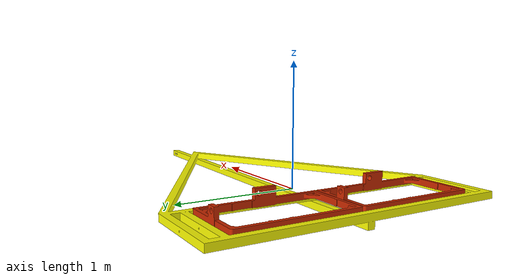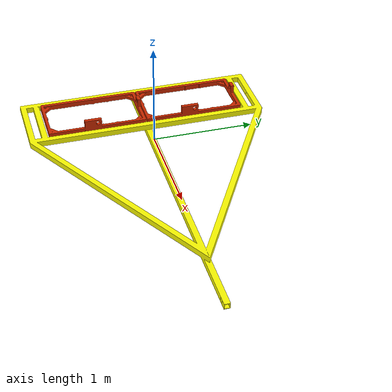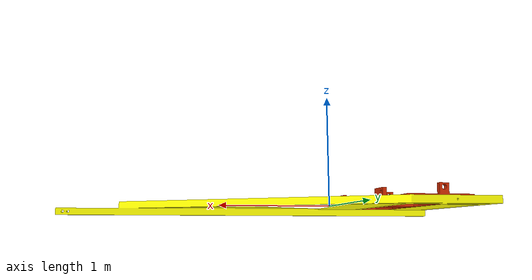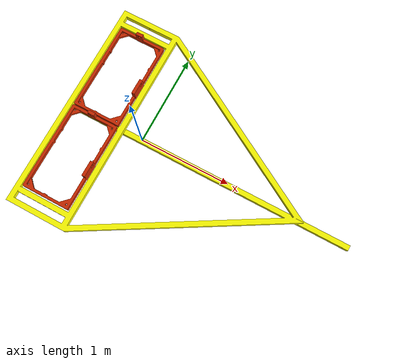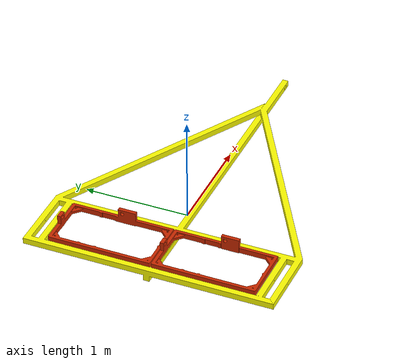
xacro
<?xml version="1.0"?>
<robot xmlns:xacro="http://www.ros.org/wiki/xacro" name="dual_em61_trailer">

<!-- Some Color Materials -->
  <material name="Black"><color rgba="0.0 0.0 0.0 1.0"/></material>
  <material name="orange"><color rgba="0.8 0.16 0.0 1" /></material>
  <material name="yellow"><color rgba="1.0 1.0 0.0 1" /></material>

<!-- xacro parameters -->
  <xacro:property name="M_PI" value="3.14159"/>
  <!-- Robot parameters -->
  <xacro:property name="ground_clearance" value="0.254" />
  <!-- This is not including the bumpers -->
  <xacro:property name="trailer_length" value="3.27" />
  <!-- This is not including the wheels -->
  <xacro:property name="trailer_width" value="0.0" />
  <!-- This is not including equipment and racks on the top -->
  <xacro:property name="trailer_height" value="0.50" />
  <xacro:property name="wheel_radius" value="0.0"/>
  <xacro:property name="wheel_width" value="0.0"/>

<!-- xacro macros -->
  <xacro:macro name="default_inertial" params="mass">
    <inertial>
      <mass value="${mass}" />
      <inertia ixx="1.0" ixy="0.0" ixz="0.0"
               iyy="1.0" iyz="0.0"
               izz="1.0" />
      </inertial>
  </xacro:macro>

<!-- links -->
  <!-- base_link -->
  <!-- The link that is the origin of all of the components of the -->
  <!-- robot and should also represent the main chassis via inertial, -->
  <!-- visual, and geometry elements of the link -->
  <link name="base_link"/>

   <!-- zvp Link -->
  <link name="zvp_link">
      <xacro:default_inertial mass="80"/>

    <visual>
      <origin xyz="0 0 0" rpy="0 0 0"/>
      <geometry>
        <mesh filename="package://segwayrmp400_description/meshes/dual_em61_trailer.stl"/>
      </geometry>
      <material name="yellow"/>
    </visual>
  </link>

  <joint name="base_zvp_joint" type="fixed">
    <origin xyz="-0.56 0.0 0.0" rpy="0 0 0"/>
    <parent link="base_link"/>
    <child link="zvp_link"/>
  </joint>

  <!-- coil1 Link -->
  <link name="coil1_link">
      <visual>
      <origin xyz="0 0 0" rpy="0 0 0"/>
      <geometry>
        <mesh filename="package://segwayrmp400_description/meshes/em61.stl"/>
      </geometry>
      <material name="orange"/>
    </visual>
  </link>

  <joint name="base_coil1_joint" type="fixed">
    <origin xyz="-0.56 0.5 0.0" rpy="0 0 0"/>
    <parent link="base_link"/>
    <child link="coil1_link"/>
  </joint>

  <!-- coil2 Link -->
  <link name="coil2_link">
      <visual>
      <origin xyz="0 0 0" rpy="0 0 0"/>
      <geometry>
        <mesh filename="package://segwayrmp400_description/meshes/em61.stl"/>
      </geometry>
      <material name="orange"/>
    </visual>
  </link>

  <joint name="base_coil2_joint" type="fixed">
    <origin xyz="-0.56 -0.5 0.0" rpy="0 0 0"/>
    <parent link="base_link"/>
    <child link="coil2_link"/>
  </joint>

</robot>
